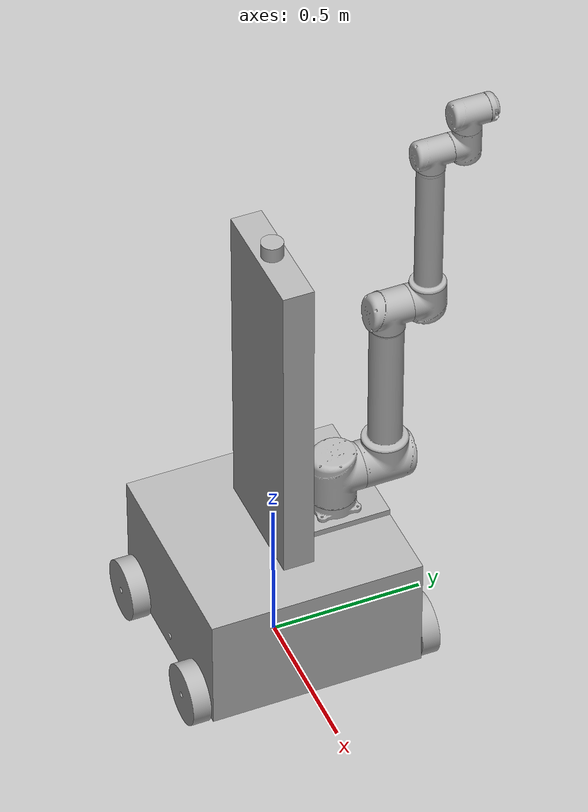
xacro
<?xml version="1.0"?>
<robot xmlns:xacro="http://www.ros.org/wiki/xacro" name="v2_p_robot">
    <xacro:arg name="initial_positions_file" default="initial_positions.yaml" />

    <!-- Import v2_p_robot urdf file -->
    <xacro:include filename="$(find v2_p_robot_description)/urdf/v2_p_robot.xacro" />

    <!-- Import control_xacro -->
    <xacro:include filename="v2_p_robot.ros2_control.xacro" />

    <xacro:v2_p_robot_ros2_control name="FakeSystem" initial_positions_file="$(arg initial_positions_file)"/>

</robot>

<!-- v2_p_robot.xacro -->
<robot name="v2_p_robot" xmlns:xacro="http://www.ros.org/wiki/xacro">

<xacro:include filename="$(find v2_p_robot_description)/urdf/materials.xacro" />
<xacro:include filename="$(find v2_p_robot_description)/urdf/v2_p_robot.trans" />
<xacro:include filename="$(find v2_p_robot_description)/urdf/v2_p_robot.gazebo" />
<link name="base_link">
  <inertial>
    <origin xyz="-3.2652831199242444e-06 0.0 0.386716985107849" rpy="0 0 0"/>
    <mass value="649.4306812944448"/>
    <inertia ixx="95.5002" iyy="97.07198" izz="44.99341" ixy="0.0" iyz="0.0" ixz="-0.000608"/>
  </inertial>
  <visual>
    <origin xyz="0 0 0" rpy="0 0 0"/>
    <geometry>
      <mesh filename="file://$(find v2_p_robot_description)/meshes/base_link.stl" scale="0.001 0.001 0.001"/>
    </geometry>
    <material name="silver"/>
  </visual>
  <collision>
    <origin xyz="0 0 0" rpy="0 0 0"/>
    <geometry>
      <mesh filename="file://$(find v2_p_robot_description)/meshes/base_link.stl" scale="0.001 0.001 0.001"/>
    </geometry>
  </collision>
</link>

<link name="torso_1">
  <inertial>
    <origin xyz="0.0 0.15000000000000002 0.010000000000000009" rpy="0 0 0"/>
    <mass value="9.42"/>
    <inertia ixx="0.070964" iyy="0.031714" izz="0.10205" ixy="0.0" iyz="0.0" ixz="0.0"/>
  </inertial>
  <visual>
    <origin xyz="-0.0 -0.05 -0.45" rpy="0 0 0"/>
    <geometry>
      <mesh filename="file://$(find v2_p_robot_description)/meshes/torso_1.stl" scale="0.001 0.001 0.001"/>
    </geometry>
    <material name="silver"/>
  </visual>
  <collision>
    <origin xyz="-0.0 -0.05 -0.45" rpy="0 0 0"/>
    <geometry>
      <mesh filename="file://$(find v2_p_robot_description)/meshes/torso_1.stl" scale="0.001 0.001 0.001"/>
    </geometry>
  </collision>
</link>

<link name="base_1">
  <inertial>
    <origin xyz="6.966308995684051e-06 -0.002138497602991063 0.018435411870082075" rpy="0 0 0"/>
    <mass value="5.54464509936715"/>
    <inertia ixx="0.009071" iyy="0.008995" izz="0.016712" ixy="0.0" iyz="2e-06" ixz="1e-06"/>
  </inertial>
  <visual>
    <origin xyz="-0.0 -0.2 -0.47" rpy="0 0 0"/>
    <geometry>
      <mesh filename="file://$(find v2_p_robot_description)/meshes/base_1.stl" scale="0.001 0.001 0.001"/>
    </geometry>
    <material name="silver"/>
  </visual>
  <collision>
    <origin xyz="-0.0 -0.2 -0.47" rpy="0 0 0"/>
    <geometry>
      <mesh filename="file://$(find v2_p_robot_description)/meshes/base_1.stl" scale="0.001 0.001 0.001"/>
    </geometry>
  </collision>
</link>

<link name="motor1_1">
  <inertial>
    <origin xyz="3.504860089470183e-06 0.01161768324988216 0.07847882164389886" rpy="0 0 0"/>
    <mass value="24.129936117867366"/>
    <inertia ixx="0.090099" iyy="0.084134" izz="0.079447" ixy="-3e-06" iyz="-0.006739" ixz="-8e-06"/>
  </inertial>
  <visual>
    <origin xyz="-0.0 -0.198021 -0.508" rpy="0 0 0"/>
    <geometry>
      <mesh filename="file://$(find v2_p_robot_description)/meshes/motor1_1.stl" scale="0.001 0.001 0.001"/>
    </geometry>
    <material name="silver"/>
  </visual>
  <collision>
    <origin xyz="-0.0 -0.198021 -0.508" rpy="0 0 0"/>
    <geometry>
      <mesh filename="file://$(find v2_p_robot_description)/meshes/motor1_1.stl" scale="0.001 0.001 0.001"/>
    </geometry>
  </collision>
</link>

<link name="motor2_1">
  <inertial>
    <origin xyz="-3.654100753852139e-06 0.07847839189284517 0.01161797619442928" rpy="0 0 0"/>
    <mass value="24.129961074086964"/>
    <inertia ixx="0.090098" iyy="0.079445" izz="0.084135" ixy="8e-06" iyz="-0.006738" ixz="3e-06"/>
  </inertial>
  <visual>
    <origin xyz="0.0 -0.284021 -0.598" rpy="0 0 0"/>
    <geometry>
      <mesh filename="file://$(find v2_p_robot_description)/meshes/motor2_1.stl" scale="0.001 0.001 0.001"/>
    </geometry>
    <material name="silver"/>
  </visual>
  <collision>
    <origin xyz="0.0 -0.284021 -0.598" rpy="0 0 0"/>
    <geometry>
      <mesh filename="file://$(find v2_p_robot_description)/meshes/motor2_1.stl" scale="0.001 0.001 0.001"/>
    </geometry>
  </collision>
</link>

<link name="link1_1">
  <inertial>
    <origin xyz="-4.634071468817463e-10 -1.7282083031311402e-07 0.22693827410466805" rpy="0 0 0"/>
    <mass value="33.79520671070769"/>
    <inertia ixx="0.644929" iyy="0.644929" izz="0.050959" ixy="0.0" iyz="-0.0" ixz="0.0"/>
  </inertial>
  <visual>
    <origin xyz="0.0 -0.374021 -0.684" rpy="0 0 0"/>
    <geometry>
      <mesh filename="file://$(find v2_p_robot_description)/meshes/link1_1.stl" scale="0.001 0.001 0.001"/>
    </geometry>
    <material name="silver"/>
  </visual>
  <collision>
    <origin xyz="0.0 -0.374021 -0.684" rpy="0 0 0"/>
    <geometry>
      <mesh filename="file://$(find v2_p_robot_description)/meshes/link1_1.stl" scale="0.001 0.001 0.001"/>
    </geometry>
  </collision>
</link>

<link name="motor3_1">
  <inertial>
    <origin xyz="3.278174650247041e-05 0.010391356445367261 0.05637845677292108" rpy="0 0 0"/>
    <mass value="10.470731220576877"/>
    <inertia ixx="0.022711" iyy="0.020738" izz="0.021274" ixy="2.3e-05" iyz="-0.002117" ixz="1e-06"/>
  </inertial>
  <visual>
    <origin xyz="0.0 -0.374021 -1.1446" rpy="0 0 0"/>
    <geometry>
      <mesh filename="file://$(find v2_p_robot_description)/meshes/motor3_1.stl" scale="0.001 0.001 0.001"/>
    </geometry>
    <material name="silver"/>
  </visual>
  <collision>
    <origin xyz="0.0 -0.374021 -1.1446" rpy="0 0 0"/>
    <geometry>
      <mesh filename="file://$(find v2_p_robot_description)/meshes/motor3_1.stl" scale="0.001 0.001 0.001"/>
    </geometry>
  </collision>
</link>

<link name="motor4_1">
  <inertial>
    <origin xyz="-1.5803563315789413e-06 0.05567293001505513 0.0063184900521702225" rpy="0 0 0"/>
    <mass value="9.86312784967229"/>
    <inertia ixx="0.0201" iyy="0.018732" izz="0.019647" ixy="-5e-06" iyz="-0.001736" ixz="-3e-06"/>
  </inertial>
  <visual>
    <origin xyz="0.0 -0.442087 -1.2109" rpy="0 0 0"/>
    <geometry>
      <mesh filename="file://$(find v2_p_robot_description)/meshes/motor4_1.stl" scale="0.001 0.001 0.001"/>
    </geometry>
    <material name="silver"/>
  </visual>
  <collision>
    <origin xyz="0.0 -0.442087 -1.2109" rpy="0 0 0"/>
    <geometry>
      <mesh filename="file://$(find v2_p_robot_description)/meshes/motor4_1.stl" scale="0.001 0.001 0.001"/>
    </geometry>
  </collision>
</link>

<link name="link2_1">
  <inertial>
    <origin xyz="-4.6347299353439995e-10 3.156573510354477e-07 0.22275845347245737" rpy="0 0 0"/>
    <mass value="20.94799568761666"/>
    <inertia ixx="0.377091" iyy="0.377091" izz="0.019925" ixy="0.0" iyz="-0.0" ixz="0.0"/>
  </inertial>
  <visual>
    <origin xyz="0.0 -0.508387 -1.2706" rpy="0 0 0"/>
    <geometry>
      <mesh filename="file://$(find v2_p_robot_description)/meshes/link2_1.stl" scale="0.001 0.001 0.001"/>
    </geometry>
    <material name="silver"/>
  </visual>
  <collision>
    <origin xyz="0.0 -0.508387 -1.2706" rpy="0 0 0"/>
    <geometry>
      <mesh filename="file://$(find v2_p_robot_description)/meshes/link2_1.stl" scale="0.001 0.001 0.001"/>
    </geometry>
  </collision>
</link>

<link name="motor5_1">
  <inertial>
    <origin xyz="-3.907940921880507e-06 0.00973576221243777 0.04639927559670887" rpy="0 0 0"/>
    <mass value="5.719005840585291"/>
    <inertia ixx="0.008741" iyy="0.006926" izz="0.008093" ixy="-1e-06" iyz="-0.000709" ixz="-0.0"/>
  </inertial>
  <visual>
    <origin xyz="0.0 -0.508387 -1.7219" rpy="0 0 0"/>
    <geometry>
      <mesh filename="file://$(find v2_p_robot_description)/meshes/motor5_1.stl" scale="0.001 0.001 0.001"/>
    </geometry>
    <material name="silver"/>
  </visual>
  <collision>
    <origin xyz="0.0 -0.508387 -1.7219" rpy="0 0 0"/>
    <geometry>
      <mesh filename="file://$(find v2_p_robot_description)/meshes/motor5_1.stl" scale="0.001 0.001 0.001"/>
    </geometry>
  </collision>
</link>

<link name="motor6_1">
  <inertial>
    <origin xyz="3.916141452883277e-06 0.04639854860926029 0.009736234591544823" rpy="0 0 0"/>
    <mass value="5.719007033273385"/>
    <inertia ixx="0.00874" iyy="0.008082" izz="0.006937" ixy="0.0" iyz="-0.000708" ixz="1e-06"/>
  </inertial>
  <visual>
    <origin xyz="0.0 -0.570086 -1.7759" rpy="0 0 0"/>
    <geometry>
      <mesh filename="file://$(find v2_p_robot_description)/meshes/motor6_1.stl" scale="0.001 0.001 0.001"/>
    </geometry>
    <material name="silver"/>
  </visual>
  <collision>
    <origin xyz="0.0 -0.570086 -1.7759" rpy="0 0 0"/>
    <geometry>
      <mesh filename="file://$(find v2_p_robot_description)/meshes/motor6_1.stl" scale="0.001 0.001 0.001"/>
    </geometry>
  </collision>
</link>

<link name="motor7_1">
  <inertial>
    <origin xyz="-3.8911087377257435e-06 0.009735493496921266 0.04639905736804373" rpy="0 0 0"/>
    <mass value="5.719009519319278"/>
    <inertia ixx="0.008739" iyy="0.006925" izz="0.008092" ixy="-1e-06" iyz="-0.000708" ixz="-0.0"/>
  </inertial>
  <visual>
    <origin xyz="0.0 -0.624086 -1.837599" rpy="0 0 0"/>
    <geometry>
      <mesh filename="file://$(find v2_p_robot_description)/meshes/motor7_1.stl" scale="0.001 0.001 0.001"/>
    </geometry>
    <material name="silver"/>
  </visual>
  <collision>
    <origin xyz="0.0 -0.624086 -1.837599" rpy="0 0 0"/>
    <geometry>
      <mesh filename="file://$(find v2_p_robot_description)/meshes/motor7_1.stl" scale="0.001 0.001 0.001"/>
    </geometry>
  </collision>
</link>

<link name="bracket_1">
  <inertial>
    <origin xyz="-0.0009510597626318769 0.013038616801135383 -3.2427925433786697e-07" rpy="0 0 0"/>
    <mass value="1.2500091239421056"/>
    <inertia ixx="0.000689" iyy="0.001175" izz="0.000643" ixy="4e-06" iyz="-0.0" ixz="0.0"/>
  </inertial>
  <visual>
    <origin xyz="0.0 -0.685785 -1.891599" rpy="0 0 0"/>
    <geometry>
      <mesh filename="file://$(find v2_p_robot_description)/meshes/bracket_1.stl" scale="0.001 0.001 0.001"/>
    </geometry>
    <material name="silver"/>
  </visual>
  <collision>
    <origin xyz="0.0 -0.685785 -1.891599" rpy="0 0 0"/>
    <geometry>
      <mesh filename="file://$(find v2_p_robot_description)/meshes/bracket_1.stl" scale="0.001 0.001 0.001"/>
    </geometry>
  </collision>
</link>

<link name="rear_left_wheel_1">
  <inertial>
    <origin xyz="1.0547118733938987e-14 0.030000000000000027 0.0" rpy="0 0 0"/>
    <mass value="1.7354786136960725"/>
    <inertia ixx="0.004903" iyy="0.008764" izz="0.004903" ixy="0.0" iyz="0.0" ixz="0.0"/>
  </inertial>
  <visual>
    <origin xyz="0.25 -0.355 -0.1" rpy="0 0 0"/>
    <geometry>
      <mesh filename="file://$(find v2_p_robot_description)/meshes/rear_left_wheel_1.stl" scale="0.001 0.001 0.001"/>
    </geometry>
    <material name="silver"/>
  </visual>
  <collision>
    <origin xyz="0.25 -0.355 -0.1" rpy="0 0 0"/>
    <geometry>
      <mesh filename="file://$(find v2_p_robot_description)/meshes/rear_left_wheel_1.stl" scale="0.001 0.001 0.001"/>
    </geometry>
  </collision>
</link>

<link name="rear_right_wheel_1">
  <inertial>
    <origin xyz="-5.551115123125783e-17 -0.030000000000000027 -1.0560996521746802e-14" rpy="0 0 0"/>
    <mass value="1.7354786136960725"/>
    <inertia ixx="0.004903" iyy="0.008764" izz="0.004903" ixy="0.0" iyz="-0.0" ixz="-0.0"/>
  </inertial>
  <visual>
    <origin xyz="0.25 0.355 -0.1" rpy="0 0 0"/>
    <geometry>
      <mesh filename="file://$(find v2_p_robot_description)/meshes/rear_right_wheel_1.stl" scale="0.001 0.001 0.001"/>
    </geometry>
    <material name="silver"/>
  </visual>
  <collision>
    <origin xyz="0.25 0.355 -0.1" rpy="0 0 0"/>
    <geometry>
      <mesh filename="file://$(find v2_p_robot_description)/meshes/rear_right_wheel_1.stl" scale="0.001 0.001 0.001"/>
    </geometry>
  </collision>
</link>

<link name="front_right_wheel_1">
  <inertial>
    <origin xyz="-1.0547118733938987e-14 -0.030000000000000027 0.0" rpy="0 0 0"/>
    <mass value="1.7354786136960725"/>
    <inertia ixx="0.004903" iyy="0.008764" izz="0.004903" ixy="-0.0" iyz="-0.0" ixz="0.0"/>
  </inertial>
  <visual>
    <origin xyz="-0.25 0.355 -0.1" rpy="0 0 0"/>
    <geometry>
      <mesh filename="file://$(find v2_p_robot_description)/meshes/front_right_wheel_1.stl" scale="0.001 0.001 0.001"/>
    </geometry>
    <material name="silver"/>
  </visual>
  <collision>
    <origin xyz="-0.25 0.355 -0.1" rpy="0 0 0"/>
    <geometry>
      <mesh filename="file://$(find v2_p_robot_description)/meshes/front_right_wheel_1.stl" scale="0.001 0.001 0.001"/>
    </geometry>
  </collision>
</link>

<link name="front_left_wheel_1">
  <inertial>
    <origin xyz="-1.0547118733938987e-14 0.030000000000000027 0.0" rpy="0 0 0"/>
    <mass value="1.7354786136960725"/>
    <inertia ixx="0.004903" iyy="0.008764" izz="0.004903" ixy="0.0" iyz="0.0" ixz="0.0"/>
  </inertial>
  <visual>
    <origin xyz="-0.25 -0.355 -0.1" rpy="0 0 0"/>
    <geometry>
      <mesh filename="file://$(find v2_p_robot_description)/meshes/front_left_wheel_1.stl" scale="0.001 0.001 0.001"/>
    </geometry>
    <material name="silver"/>
  </visual>
  <collision>
    <origin xyz="-0.25 -0.355 -0.1" rpy="0 0 0"/>
    <geometry>
      <mesh filename="file://$(find v2_p_robot_description)/meshes/front_left_wheel_1.stl" scale="0.001 0.001 0.001"/>
    </geometry>
  </collision>
</link>

<link name="lidar_1">
  <inertial>
    <origin xyz="0.0 5.9081868368592146e-18 0.02499999999999991" rpy="0 0 0"/>
    <mass value="1.5105170177541418"/>
    <inertia ixx="0.000777" iyy="0.000777" izz="0.000925" ixy="0.0" iyz="-0.0" ixz="-0.0"/>
  </inertial>
  <visual>
    <origin xyz="-0.0 -0.0 -1.55" rpy="0 0 0"/>
    <geometry>
      <mesh filename="file://$(find v2_p_robot_description)/meshes/lidar_1.stl" scale="0.001 0.001 0.001"/>
    </geometry>
    <material name="silver"/>
  </visual>
  <collision>
    <origin xyz="-0.0 -0.0 -1.55" rpy="0 0 0"/>
    <geometry>
      <mesh filename="file://$(find v2_p_robot_description)/meshes/lidar_1.stl" scale="0.001 0.001 0.001"/>
    </geometry>
  </collision>
</link>

<joint name="torso_joint" type="prismatic">
  <origin xyz="0.0 0.05 0.45" rpy="0 0 0"/>
  <parent link="base_link"/>
  <child link="torso_1"/>
  <axis xyz="0.0 0.0 1.0"/>
  <limit upper="1.1" lower="0.0" effort="100" velocity="100"/>
</joint>

<joint name="base_joint" type="fixed">
  <origin xyz="0.0 0.15 0.02" rpy="0 0 0"/>
  <parent link="torso_1"/>
  <child link="base_1"/>
</joint>

<joint name="motor1_joint" type="revolute">
  <origin xyz="0.0 -0.001979 0.038" rpy="0 0 0"/>
  <parent link="base_1"/>
  <child link="motor1_1"/>
  <axis xyz="0.0 0.0 1.0"/>
  <limit upper="1.658063" lower="-1.658063" effort="100" velocity="100"/>
</joint>

<joint name="motor2_joint" type="revolute">
  <origin xyz="-0.0 0.086 0.09" rpy="0 0 0"/>
  <parent link="motor1_1"/>
  <child link="motor2_1"/>
  <axis xyz="0.0 1.0 0.0"/>
  <limit upper="1.570796" lower="-1.570796" effort="100" velocity="100"/>
</joint>

<joint name="motor2_link1_joint" type="fixed">
  <origin xyz="0.0 0.09 0.086" rpy="0 0 0"/>
  <parent link="motor2_1"/>
  <child link="link1_1"/>
</joint>

<joint name="motor3_link1_joint" type="fixed">
  <origin xyz="0.0 0.0 0.4606" rpy="0 0 0"/>
  <parent link="link1_1"/>
  <child link="motor3_1"/>
</joint>

<joint name="motor3_joint" type="revolute">
  <origin xyz="0.0 0.068066 0.0663" rpy="0 0 0"/>
  <parent link="motor3_1"/>
  <child link="motor4_1"/>
  <axis xyz="0.0 1.0 0.0"/>
  <limit upper="2.96706" lower="-0.296706" effort="100" velocity="100"/>
</joint>

<joint name="motor4_link2_joint" type="fixed">
  <origin xyz="0.0 0.0663 0.0597" rpy="0 0 0"/>
  <parent link="motor4_1"/>
  <child link="link2_1"/>
</joint>

<joint name="motor5_link2_joint" type="fixed">
  <origin xyz="0.0 0.0 0.4513" rpy="0 0 0"/>
  <parent link="link2_1"/>
  <child link="motor5_1"/>
</joint>

<joint name="motor5_joint" type="continuous">
  <origin xyz="0.0 0.061699 0.054" rpy="0 0 0"/>
  <parent link="motor5_1"/>
  <child link="motor6_1"/>
  <axis xyz="0.0 1.0 0.0"/>
</joint>

<joint name="motor6_joint" type="continuous">
  <origin xyz="0.0 0.054 0.061699" rpy="0 0 0"/>
  <parent link="motor6_1"/>
  <child link="motor7_1"/>
  <axis xyz="0.0 0.0 1.0"/>
</joint>

<joint name="motor7_joint" type="continuous">
  <origin xyz="0.0 0.061699 0.054" rpy="0 0 0"/>
  <parent link="motor7_1"/>
  <child link="bracket_1"/>
  <axis xyz="0.0 1.0 0.0"/>
</joint>

<joint name="rear_left_wheel_joint" type="continuous">
  <origin xyz="-0.25 0.355 0.1" rpy="0 0 0"/>
  <parent link="base_link"/>
  <child link="rear_left_wheel_1"/>
  <axis xyz="0.0 1.0 0.0"/>
</joint>

<joint name="rear_right_wheel_joint" type="continuous">
  <origin xyz="-0.25 -0.355 0.1" rpy="0 0 0"/>
  <parent link="base_link"/>
  <child link="rear_right_wheel_1"/>
  <axis xyz="0.0 1.0 0.0"/>
</joint>

<joint name="front_right_wheel_joint" type="continuous">
  <origin xyz="0.25 -0.355 0.1" rpy="0 0 0"/>
  <parent link="base_link"/>
  <child link="front_right_wheel_1"/>
  <axis xyz="0.0 1.0 0.0"/>
</joint>

<joint name="front_left_wheel_joint" type="continuous">
  <origin xyz="0.25 0.355 0.1" rpy="0 0 0"/>
  <parent link="base_link"/>
  <child link="front_left_wheel_1"/>
  <axis xyz="0.0 1.0 0.0"/>
</joint>

<joint name="lidat_joint" type="fixed">
  <origin xyz="0.0 0.0 1.55" rpy="0 0 0"/>
  <parent link="base_link"/>
  <child link="lidar_1"/>
</joint>

</robot>

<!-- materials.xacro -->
<robot name="v2_p_robot" xmlns:xacro="http://www.ros.org/wiki/xacro" >

<material name="silver">
  <color rgba="0.700 0.700 0.700 1.000"/>
</material>

</robot>

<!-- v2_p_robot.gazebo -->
<robot name="v2_p_robot" xmlns:xacro="http://www.ros.org/wiki/xacro" >

<xacro:property name="body_color" value="Gazebo/Silver" />

<gazebo>
  <plugin name="control" filename="libgazebo_ros_control.so"/>
</gazebo>
<gazebo reference="base_link">
  <material>${body_color}</material>
  <mu1>0.2</mu1>
  <mu2>0.2</mu2>
  <self_collide>true</self_collide>
  <gravity>true</gravity>
</gazebo>

<gazebo reference="base_link">
  <material>${body_color}</material>
  <mu1>0.2</mu1>
  <mu2>0.2</mu2>
  <self_collide>true</self_collide>
  <gravity>true</gravity>
</gazebo>

<gazebo reference="rear_left_wheel_1">
  <material>${body_color}</material>
  <mu1>0.2</mu1>
  <mu2>0.2</mu2>
  <self_collide>true</self_collide>
</gazebo>

<gazebo reference="rear_right_wheel_1">
  <material>${body_color}</material>
  <mu1>0.2</mu1>
  <mu2>0.2</mu2>
  <self_collide>true</self_collide>
</gazebo>

<gazebo reference="front_right_wheel_1">
  <material>${body_color}</material>
  <mu1>0.2</mu1>
  <mu2>0.2</mu2>
  <self_collide>true</self_collide>
</gazebo>

<gazebo reference="front_left_wheel_1">
  <material>${body_color}</material>
  <mu1>0.2</mu1>
  <mu2>0.2</mu2>
  <self_collide>true</self_collide>
</gazebo>

<gazebo reference="base_1">
  <material>${body_color}</material>
  <mu1>0.2</mu1>
  <mu2>0.2</mu2>
  <self_collide>true</self_collide>
</gazebo>

<gazebo reference="motor1_1">
  <material>${body_color}</material>
  <mu1>0.2</mu1>
  <mu2>0.2</mu2>
  <self_collide>true</self_collide>
</gazebo>

<gazebo reference="motor2_1">
  <material>${body_color}</material>
  <mu1>0.2</mu1>
  <mu2>0.2</mu2>
  <self_collide>true</self_collide>
</gazebo>

<gazebo reference="link1_1">
  <material>${body_color}</material>
  <mu1>0.2</mu1>
  <mu2>0.2</mu2>
  <self_collide>true</self_collide>
</gazebo>

<gazebo reference="motor3_1">
  <material>${body_color}</material>
  <mu1>0.2</mu1>
  <mu2>0.2</mu2>
  <self_collide>true</self_collide>
</gazebo>

<gazebo reference="motor4_1">
  <material>${body_color}</material>
  <mu1>0.2</mu1>
  <mu2>0.2</mu2>
  <self_collide>true</self_collide>
</gazebo>

<gazebo reference="link2_1">
  <material>${body_color}</material>
  <mu1>0.2</mu1>
  <mu2>0.2</mu2>
  <self_collide>true</self_collide>
</gazebo>

<gazebo reference="motor5_1">
  <material>${body_color}</material>
  <mu1>0.2</mu1>
  <mu2>0.2</mu2>
  <self_collide>true</self_collide>
</gazebo>

<gazebo reference="motor6_1">
  <material>${body_color}</material>
  <mu1>0.2</mu1>
  <mu2>0.2</mu2>
  <self_collide>true</self_collide>
</gazebo>

<gazebo reference="motor7_1">
  <material>${body_color}</material>
  <mu1>0.2</mu1>
  <mu2>0.2</mu2>
  <self_collide>true</self_collide>
</gazebo>

<gazebo reference="bracket_1">
  <material>${body_color}</material>
  <mu1>0.2</mu1>
  <mu2>0.2</mu2>
  <self_collide>true</self_collide>
</gazebo>

<gazebo reference="left_wheel_1">
  <material>${body_color}</material>
  <mu1>0.2</mu1>
  <mu2>0.2</mu2>
  <self_collide>true</self_collide>
</gazebo>

<gazebo reference="right_wheel_1">
  <material>${body_color}</material>
  <mu1>0.2</mu1>
  <mu2>0.2</mu2>
  <self_collide>true</self_collide>
</gazebo>

<gazebo reference="lidar_1">
  <material>${body_color}</material>
  <mu1>0.2</mu1>
  <mu2>0.2</mu2>
  <self_collide>true</self_collide>
</gazebo>

</robot>
